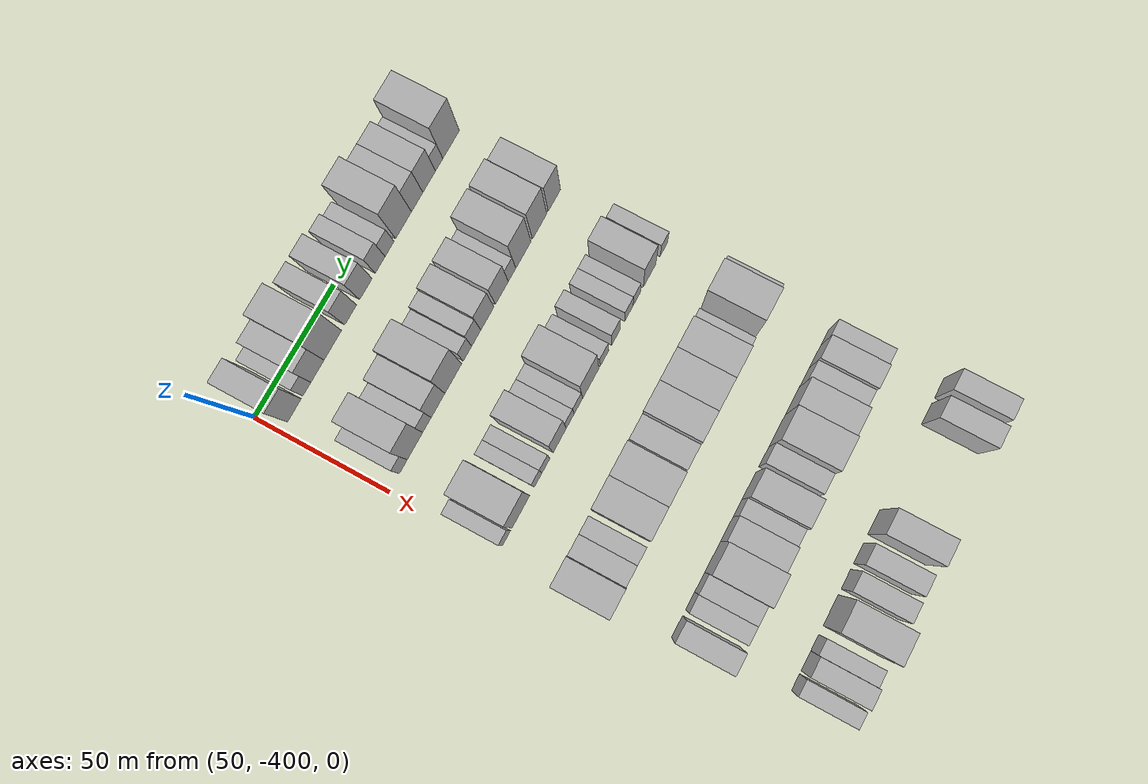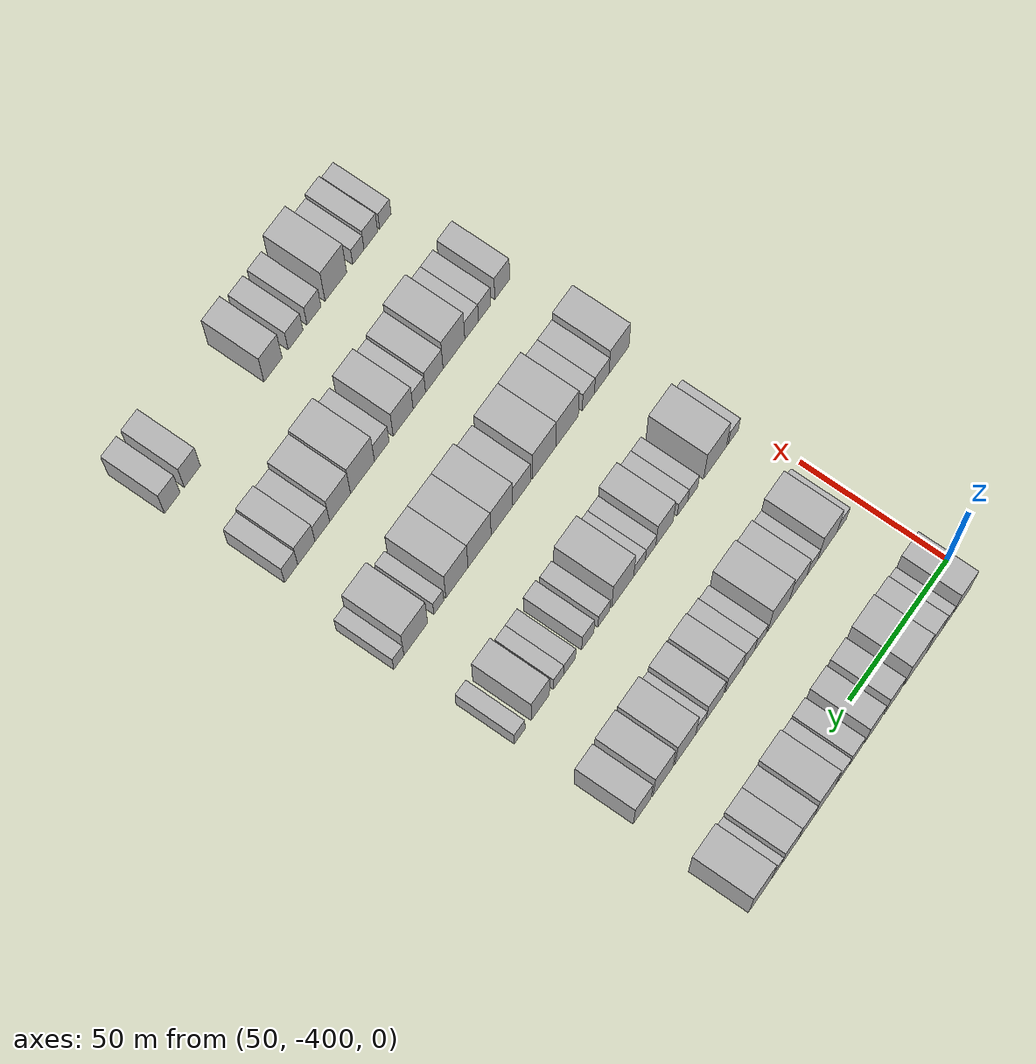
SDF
<sdf version="1.6">
 <world name="default">
  <model name="building_27">
   <static>1</static>
   <pose>50.0000 -391.8530 0 0.000000 0.000000 0.000000</pose>
   <link name="link">
    <pose>0 0 10.50 0 0 0</pose>
    <collision name="collision"><geometry><box><size>20.0000 8.5653 21.0000</size></box></geometry></collision>
    <visual name="visual">
     <cast_shadows>0</cast_shadows>
     <geometry><box><size>20.0000 8.5653 21.0000</size></box></geometry>
     <material>
      <script>
       <uri>model://HANNAS_wall/materials/scripts</uri>
       <uri>model://HANNAS_wall/materials/textures</uri>
       <name>vrc/HANNAS_wall</name>
      </script>
     </material>
    </visual>
   </link>
  </model>
  <model name="building_28">
   <static>1</static>
   <pose>50.0000 -384.0498 0 0.000000 0.000000 0.000000</pose>
   <link name="link">
    <pose>0 0 6.00 0 0 0</pose>
    <collision name="collision"><geometry><box><size>20.0000 5.0412 12.0000</size></box></geometry></collision>
    <visual name="visual">
     <cast_shadows>0</cast_shadows>
     <geometry><box><size>20.0000 5.0412 12.0000</size></box></geometry>
     <material>
      <script>
       <uri>model://HANNAS_wall/materials/scripts</uri>
       <uri>model://HANNAS_wall/materials/textures</uri>
       <name>vrc/HANNAS_wall</name>
      </script>
     </material>
    </visual>
   </link>
  </model>
  <model name="building_29">
   <static>1</static>
   <pose>50.0000 -377.3930 0 0.000000 0.000000 0.000000</pose>
   <link name="link">
    <pose>0 0 9.00 0 0 0</pose>
    <collision name="collision"><geometry><box><size>20.0000 8.2723 18.0000</size></box></geometry></collision>
    <visual name="visual">
     <cast_shadows>0</cast_shadows>
     <geometry><box><size>20.0000 8.2723 18.0000</size></box></geometry>
     <material>
      <script>
       <uri>model://HANNAS_wall/materials/scripts</uri>
       <uri>model://HANNAS_wall/materials/textures</uri>
       <name>vrc/HANNAS_wall</name>
      </script>
     </material>
    </visual>
   </link>
  </model>
  <model name="building_30">
   <static>1</static>
   <pose>50.0000 -367.6596 0 0.000000 0.000000 0.000000</pose>
   <link name="link">
    <pose>0 0 12.00 0 0 0</pose>
    <collision name="collision"><geometry><box><size>20.0000 11.1945 24.0000</size></box></geometry></collision>
    <visual name="visual">
     <cast_shadows>0</cast_shadows>
     <geometry><box><size>20.0000 11.1945 24.0000</size></box></geometry>
     <material>
      <script>
       <uri>model://HANNAS_wall/materials/scripts</uri>
       <uri>model://HANNAS_wall/materials/textures</uri>
       <name>vrc/HANNAS_wall</name>
      </script>
     </material>
    </visual>
   </link>
  </model>
  <model name="building_31">
   <static>1</static>
   <pose>50.0000 -356.2446 0 0.000000 0.000000 0.000000</pose>
   <link name="link">
    <pose>0 0 9.00 0 0 0</pose>
    <collision name="collision"><geometry><box><size>20.0000 7.6356 18.0000</size></box></geometry></collision>
    <visual name="visual">
     <cast_shadows>0</cast_shadows>
     <geometry><box><size>20.0000 7.6356 18.0000</size></box></geometry>
     <material>
      <script>
       <uri>model://HANNAS_wall/materials/scripts</uri>
       <uri>model://HANNAS_wall/materials/textures</uri>
       <name>vrc/HANNAS_wall</name>
      </script>
     </material>
    </visual>
   </link>
  </model>
  <model name="building_32">
   <static>1</static>
   <pose>50.0000 -346.3736 0 0.000000 0.000000 0.000000</pose>
   <link name="link">
    <pose>0 0 9.00 0 0 0</pose>
    <collision name="collision"><geometry><box><size>20.0000 8.1063 18.0000</size></box></geometry></collision>
    <visual name="visual">
     <cast_shadows>0</cast_shadows>
     <geometry><box><size>20.0000 8.1063 18.0000</size></box></geometry>
     <material>
      <script>
       <uri>model://HANNAS_wall/materials/scripts</uri>
       <uri>model://HANNAS_wall/materials/textures</uri>
       <name>vrc/HANNAS_wall</name>
      </script>
     </material>
    </visual>
   </link>
  </model>
  <model name="building_33">
   <static>1</static>
   <pose>50.0000 -337.1075 0 0.000000 0.000000 0.000000</pose>
   <link name="link">
    <pose>0 0 7.50 0 0 0</pose>
    <collision name="collision"><geometry><box><size>20.0000 6.4259 15.0000</size></box></geometry></collision>
    <visual name="visual">
     <cast_shadows>0</cast_shadows>
     <geometry><box><size>20.0000 6.4259 15.0000</size></box></geometry>
     <material>
      <script>
       <uri>model://HANNAS_wall/materials/scripts</uri>
       <uri>model://HANNAS_wall/materials/textures</uri>
       <name>vrc/HANNAS_wall</name>
      </script>
     </material>
    </visual>
   </link>
  </model>
  <model name="building_34">
   <static>1</static>
   <pose>50.0000 -330.9429 0 0.000000 0.000000 0.000000</pose>
   <link name="link">
    <pose>0 0 6.00 0 0 0</pose>
    <collision name="collision"><geometry><box><size>20.0000 5.9034 12.0000</size></box></geometry></collision>
    <visual name="visual">
     <cast_shadows>0</cast_shadows>
     <geometry><box><size>20.0000 5.9034 12.0000</size></box></geometry>
     <material>
      <script>
       <uri>model://HANNAS_wall/materials/scripts</uri>
       <uri>model://HANNAS_wall/materials/textures</uri>
       <name>vrc/HANNAS_wall</name>
      </script>
     </material>
    </visual>
   </link>
  </model>
  <model name="building_35">
   <static>1</static>
   <pose>50.0000 -321.7279 0 0.000000 0.000000 0.000000</pose>
   <link name="link">
    <pose>0 0 12.00 0 0 0</pose>
    <collision name="collision"><geometry><box><size>20.0000 10.5265 24.0000</size></box></geometry></collision>
    <visual name="visual">
     <cast_shadows>0</cast_shadows>
     <geometry><box><size>20.0000 10.5265 24.0000</size></box></geometry>
     <material>
      <script>
       <uri>model://HANNAS_wall/materials/scripts</uri>
       <uri>model://HANNAS_wall/materials/textures</uri>
       <name>vrc/HANNAS_wall</name>
      </script>
     </material>
    </visual>
   </link>
  </model>
  <model name="building_36">
   <static>1</static>
   <pose>50.0000 -312.6658 0 0.000000 0.000000 0.000000</pose>
   <link name="link">
    <pose>0 0 9.00 0 0 0</pose>
    <collision name="collision"><geometry><box><size>20.0000 7.5977 18.0000</size></box></geometry></collision>
    <visual name="visual">
     <cast_shadows>0</cast_shadows>
     <geometry><box><size>20.0000 7.5977 18.0000</size></box></geometry>
     <material>
      <script>
       <uri>model://HANNAS_wall/materials/scripts</uri>
       <uri>model://HANNAS_wall/materials/textures</uri>
       <name>vrc/HANNAS_wall</name>
      </script>
     </material>
    </visual>
   </link>
  </model>
  <model name="building_37">
   <static>1</static>
   <pose>50.0000 -304.6271 0 0.000000 0.000000 0.000000</pose>
   <link name="link">
    <pose>0 0 9.00 0 0 0</pose>
    <collision name="collision"><geometry><box><size>20.0000 8.4796 18.0000</size></box></geometry></collision>
    <visual name="visual">
     <cast_shadows>0</cast_shadows>
     <geometry><box><size>20.0000 8.4796 18.0000</size></box></geometry>
     <material>
      <script>
       <uri>model://HANNAS_wall/materials/scripts</uri>
       <uri>model://HANNAS_wall/materials/textures</uri>
       <name>vrc/HANNAS_wall</name>
      </script>
     </material>
    </visual>
   </link>
  </model>
  <model name="building_38">
   <static>1</static>
   <pose>50.0000 -297.9302 0 0.000000 0.000000 0.000000</pose>
   <link name="link">
    <pose>0 0 6.00 0 0 0</pose>
    <collision name="collision"><geometry><box><size>20.0000 4.9142 12.0000</size></box></geometry></collision>
    <visual name="visual">
     <cast_shadows>0</cast_shadows>
     <geometry><box><size>20.0000 4.9142 12.0000</size></box></geometry>
     <material>
      <script>
       <uri>model://HANNAS_wall/materials/scripts</uri>
       <uri>model://HANNAS_wall/materials/textures</uri>
       <name>vrc/HANNAS_wall</name>
      </script>
     </material>
    </visual>
   </link>
  </model>
  <model name="building_39">
   <static>1</static>
   <pose>50.0000 -289.8506 0 0.000000 0.000000 0.000000</pose>
   <link name="link">
    <pose>0 0 12.00 0 0 0</pose>
    <collision name="collision"><geometry><box><size>20.0000 11.2450 24.0000</size></box></geometry></collision>
    <visual name="visual">
     <cast_shadows>0</cast_shadows>
     <geometry><box><size>20.0000 11.2450 24.0000</size></box></geometry>
     <material>
      <script>
       <uri>model://HANNAS_wall/materials/scripts</uri>
       <uri>model://HANNAS_wall/materials/textures</uri>
       <name>vrc/HANNAS_wall</name>
      </script>
     </material>
    </visual>
   </link>
  </model>
  <model name="building_170">
   <static>1</static>
   <pose>90.0000 -391.0167 0 0.000000 0.000000 0.000000</pose>
   <link name="link">
    <pose>0 0 6.00 0 0 0</pose>
    <collision name="collision"><geometry><box><size>20.0000 5.0214 12.0000</size></box></geometry></collision>
    <visual name="visual">
     <cast_shadows>0</cast_shadows>
     <geometry><box><size>20.0000 5.0214 12.0000</size></box></geometry>
     <material>
      <script>
       <uri>model://HANNAS_wall/materials/scripts</uri>
       <uri>model://HANNAS_wall/materials/textures</uri>
       <name>vrc/HANNAS_wall</name>
      </script>
     </material>
    </visual>
   </link>
  </model>
  <model name="building_171">
   <static>1</static>
   <pose>90.0000 -383.5567 0 0.000000 0.000000 0.000000</pose>
   <link name="link">
    <pose>0 0 12.00 0 0 0</pose>
    <collision name="collision"><geometry><box><size>20.0000 9.8986 24.0000</size></box></geometry></collision>
    <visual name="visual">
     <cast_shadows>0</cast_shadows>
     <geometry><box><size>20.0000 9.8986 24.0000</size></box></geometry>
     <material>
      <script>
       <uri>model://HANNAS_wall/materials/scripts</uri>
       <uri>model://HANNAS_wall/materials/textures</uri>
       <name>vrc/HANNAS_wall</name>
      </script>
     </material>
    </visual>
   </link>
  </model>
  <model name="building_172">
   <static>1</static>
   <pose>90.0000 -375.8844 0 0.000000 0.000000 0.000000</pose>
   <link name="link">
    <pose>0 0 6.00 0 0 0</pose>
    <collision name="collision"><geometry><box><size>20.0000 5.4459 12.0000</size></box></geometry></collision>
    <visual name="visual">
     <cast_shadows>0</cast_shadows>
     <geometry><box><size>20.0000 5.4459 12.0000</size></box></geometry>
     <material>
      <script>
       <uri>model://HANNAS_wall/materials/scripts</uri>
       <uri>model://HANNAS_wall/materials/textures</uri>
       <name>vrc/HANNAS_wall</name>
      </script>
     </material>
    </visual>
   </link>
  </model>
  <model name="building_173">
   <static>1</static>
   <pose>90.0000 -368.7141 0 0.000000 0.000000 0.000000</pose>
   <link name="link">
    <pose>0 0 9.00 0 0 0</pose>
    <collision name="collision"><geometry><box><size>20.0000 8.8949 18.0000</size></box></geometry></collision>
    <visual name="visual">
     <cast_shadows>0</cast_shadows>
     <geometry><box><size>20.0000 8.8949 18.0000</size></box></geometry>
     <material>
      <script>
       <uri>model://HANNAS_wall/materials/scripts</uri>
       <uri>model://HANNAS_wall/materials/textures</uri>
       <name>vrc/HANNAS_wall</name>
      </script>
     </material>
    </visual>
   </link>
  </model>
  <model name="building_174">
   <static>1</static>
   <pose>90.0000 -358.7588 0 0.000000 0.000000 0.000000</pose>
   <link name="link">
    <pose>0 0 12.00 0 0 0</pose>
    <collision name="collision"><geometry><box><size>20.0000 11.0158 24.0000</size></box></geometry></collision>
    <visual name="visual">
     <cast_shadows>0</cast_shadows>
     <geometry><box><size>20.0000 11.0158 24.0000</size></box></geometry>
     <material>
      <script>
       <uri>model://HANNAS_wall/materials/scripts</uri>
       <uri>model://HANNAS_wall/materials/textures</uri>
       <name>vrc/HANNAS_wall</name>
      </script>
     </material>
    </visual>
   </link>
  </model>
  <model name="building_175">
   <static>1</static>
   <pose>90.0000 -349.4535 0 0.000000 0.000000 0.000000</pose>
   <link name="link">
    <pose>0 0 6.00 0 0 0</pose>
    <collision name="collision"><geometry><box><size>20.0000 5.5949 12.0000</size></box></geometry></collision>
    <visual name="visual">
     <cast_shadows>0</cast_shadows>
     <geometry><box><size>20.0000 5.5949 12.0000</size></box></geometry>
     <material>
      <script>
       <uri>model://HANNAS_wall/materials/scripts</uri>
       <uri>model://HANNAS_wall/materials/textures</uri>
       <name>vrc/HANNAS_wall</name>
      </script>
     </material>
    </visual>
   </link>
  </model>
  <model name="building_176">
   <static>1</static>
   <pose>90.0000 -343.6348 0 0.000000 0.000000 0.000000</pose>
   <link name="link">
    <pose>0 0 7.50 0 0 0</pose>
    <collision name="collision"><geometry><box><size>20.0000 6.0424 15.0000</size></box></geometry></collision>
    <visual name="visual">
     <cast_shadows>0</cast_shadows>
     <geometry><box><size>20.0000 6.0424 15.0000</size></box></geometry>
     <material>
      <script>
       <uri>model://HANNAS_wall/materials/scripts</uri>
       <uri>model://HANNAS_wall/materials/textures</uri>
       <name>vrc/HANNAS_wall</name>
      </script>
     </material>
    </visual>
   </link>
  </model>
  <model name="building_177">
   <static>1</static>
   <pose>90.0000 -336.2490 0 0.000000 0.000000 0.000000</pose>
   <link name="link">
    <pose>0 0 9.00 0 0 0</pose>
    <collision name="collision"><geometry><box><size>20.0000 8.7292 18.0000</size></box></geometry></collision>
    <visual name="visual">
     <cast_shadows>0</cast_shadows>
     <geometry><box><size>20.0000 8.7292 18.0000</size></box></geometry>
     <material>
      <script>
       <uri>model://HANNAS_wall/materials/scripts</uri>
       <uri>model://HANNAS_wall/materials/textures</uri>
       <name>vrc/HANNAS_wall</name>
      </script>
     </material>
    </visual>
   </link>
  </model>
  <model name="building_178">
   <static>1</static>
   <pose>90.0000 -326.5201 0 0.000000 0.000000 0.000000</pose>
   <link name="link">
    <pose>0 0 9.00 0 0 0</pose>
    <collision name="collision"><geometry><box><size>20.0000 8.7286 18.0000</size></box></geometry></collision>
    <visual name="visual">
     <cast_shadows>0</cast_shadows>
     <geometry><box><size>20.0000 8.7286 18.0000</size></box></geometry>
     <material>
      <script>
       <uri>model://HANNAS_wall/materials/scripts</uri>
       <uri>model://HANNAS_wall/materials/textures</uri>
       <name>vrc/HANNAS_wall</name>
      </script>
     </material>
    </visual>
   </link>
  </model>
  <model name="building_179">
   <static>1</static>
   <pose>90.0000 -319.6272 0 0.000000 0.000000 0.000000</pose>
   <link name="link">
    <pose>0 0 6.00 0 0 0</pose>
    <collision name="collision"><geometry><box><size>20.0000 5.0571 12.0000</size></box></geometry></collision>
    <visual name="visual">
     <cast_shadows>0</cast_shadows>
     <geometry><box><size>20.0000 5.0571 12.0000</size></box></geometry>
     <material>
      <script>
       <uri>model://HANNAS_wall/materials/scripts</uri>
       <uri>model://HANNAS_wall/materials/textures</uri>
       <name>vrc/HANNAS_wall</name>
      </script>
     </material>
    </visual>
   </link>
  </model>
  <model name="building_180">
   <static>1</static>
   <pose>90.0000 -311.9408 0 0.000000 0.000000 0.000000</pose>
   <link name="link">
    <pose>0 0 12.00 0 0 0</pose>
    <collision name="collision"><geometry><box><size>20.0000 10.3157 24.0000</size></box></geometry></collision>
    <visual name="visual">
     <cast_shadows>0</cast_shadows>
     <geometry><box><size>20.0000 10.3157 24.0000</size></box></geometry>
     <material>
      <script>
       <uri>model://HANNAS_wall/materials/scripts</uri>
       <uri>model://HANNAS_wall/materials/textures</uri>
       <name>vrc/HANNAS_wall</name>
      </script>
     </material>
    </visual>
   </link>
  </model>
  <model name="building_181">
   <static>1</static>
   <pose>90.0000 -300.8740 0 0.000000 0.000000 0.000000</pose>
   <link name="link">
    <pose>0 0 12.00 0 0 0</pose>
    <collision name="collision"><geometry><box><size>20.0000 9.8180 24.0000</size></box></geometry></collision>
    <visual name="visual">
     <cast_shadows>0</cast_shadows>
     <geometry><box><size>20.0000 9.8180 24.0000</size></box></geometry>
     <material>
      <script>
       <uri>model://HANNAS_wall/materials/scripts</uri>
       <uri>model://HANNAS_wall/materials/textures</uri>
       <name>vrc/HANNAS_wall</name>
      </script>
     </material>
    </visual>
   </link>
  </model>
  <model name="building_182">
   <static>1</static>
   <pose>90.0000 -290.6898 0 0.000000 0.000000 0.000000</pose>
   <link name="link">
    <pose>0 0 10.50 0 0 0</pose>
    <collision name="collision"><geometry><box><size>20.0000 8.5504 21.0000</size></box></geometry></collision>
    <visual name="visual">
     <cast_shadows>0</cast_shadows>
     <geometry><box><size>20.0000 8.5504 21.0000</size></box></geometry>
     <material>
      <script>
       <uri>model://HANNAS_wall/materials/scripts</uri>
       <uri>model://HANNAS_wall/materials/textures</uri>
       <name>vrc/HANNAS_wall</name>
      </script>
     </material>
    </visual>
   </link>
  </model>
  <model name="building_303">
   <static>1</static>
   <pose>130.0000 -395.1332 0 0.000000 0.000000 0.000000</pose>
   <link name="link">
    <pose>0 0 6.00 0 0 0</pose>
    <collision name="collision"><geometry><box><size>20.0000 5.1556 12.0000</size></box></geometry></collision>
    <visual name="visual">
     <cast_shadows>0</cast_shadows>
     <geometry><box><size>20.0000 5.1556 12.0000</size></box></geometry>
     <material>
      <script>
       <uri>model://HANNAS_wall/materials/scripts</uri>
       <uri>model://HANNAS_wall/materials/textures</uri>
       <name>vrc/HANNAS_wall</name>
      </script>
     </material>
    </visual>
   </link>
  </model>
  <model name="building_304">
   <static>1</static>
   <pose>130.0000 -385.7916 0 0.000000 0.000000 0.000000</pose>
   <link name="link">
    <pose>0 0 12.00 0 0 0</pose>
    <collision name="collision"><geometry><box><size>20.0000 11.5278 24.0000</size></box></geometry></collision>
    <visual name="visual">
     <cast_shadows>0</cast_shadows>
     <geometry><box><size>20.0000 11.5278 24.0000</size></box></geometry>
     <material>
      <script>
       <uri>model://HANNAS_wall/materials/scripts</uri>
       <uri>model://HANNAS_wall/materials/textures</uri>
       <name>vrc/HANNAS_wall</name>
      </script>
     </material>
    </visual>
   </link>
  </model>
  <model name="building_305">
   <static>1</static>
   <pose>130.0000 -374.5091 0 0.000000 0.000000 0.000000</pose>
   <link name="link">
    <pose>0 0 6.00 0 0 0</pose>
    <collision name="collision"><geometry><box><size>20.0000 5.0370 12.0000</size></box></geometry></collision>
    <visual name="visual">
     <cast_shadows>0</cast_shadows>
     <geometry><box><size>20.0000 5.0370 12.0000</size></box></geometry>
     <material>
      <script>
       <uri>model://HANNAS_wall/materials/scripts</uri>
       <uri>model://HANNAS_wall/materials/textures</uri>
       <name>vrc/HANNAS_wall</name>
      </script>
     </material>
    </visual>
   </link>
  </model>
  <model name="building_306">
   <static>1</static>
   <pose>130.0000 -369.2993 0 0.000000 0.000000 0.000000</pose>
   <link name="link">
    <pose>0 0 6.00 0 0 0</pose>
    <collision name="collision"><geometry><box><size>20.0000 5.3827 12.0000</size></box></geometry></collision>
    <visual name="visual">
     <cast_shadows>0</cast_shadows>
     <geometry><box><size>20.0000 5.3827 12.0000</size></box></geometry>
     <material>
      <script>
       <uri>model://HANNAS_wall/materials/scripts</uri>
       <uri>model://HANNAS_wall/materials/textures</uri>
       <name>vrc/HANNAS_wall</name>
      </script>
     </material>
    </visual>
   </link>
  </model>
  <model name="building_307">
   <static>1</static>
   <pose>130.0000 -360.2123 0 0.000000 0.000000 0.000000</pose>
   <link name="link">
    <pose>0 0 10.50 0 0 0</pose>
    <collision name="collision"><geometry><box><size>20.0000 8.7913 21.0000</size></box></geometry></collision>
    <visual name="visual">
     <cast_shadows>0</cast_shadows>
     <geometry><box><size>20.0000 8.7913 21.0000</size></box></geometry>
     <material>
      <script>
       <uri>model://HANNAS_wall/materials/scripts</uri>
       <uri>model://HANNAS_wall/materials/textures</uri>
       <name>vrc/HANNAS_wall</name>
      </script>
     </material>
    </visual>
   </link>
  </model>
  <model name="building_308">
   <static>1</static>
   <pose>130.0000 -353.1827 0 0.000000 0.000000 0.000000</pose>
   <link name="link">
    <pose>0 0 6.00 0 0 0</pose>
    <collision name="collision"><geometry><box><size>20.0000 5.2679 12.0000</size></box></geometry></collision>
    <visual name="visual">
     <cast_shadows>0</cast_shadows>
     <geometry><box><size>20.0000 5.2679 12.0000</size></box></geometry>
     <material>
      <script>
       <uri>model://HANNAS_wall/materials/scripts</uri>
       <uri>model://HANNAS_wall/materials/textures</uri>
       <name>vrc/HANNAS_wall</name>
      </script>
     </material>
    </visual>
   </link>
  </model>
  <model name="building_309">
   <static>1</static>
   <pose>130.0000 -347.6521 0 0.000000 0.000000 0.000000</pose>
   <link name="link">
    <pose>0 0 6.00 0 0 0</pose>
    <collision name="collision"><geometry><box><size>20.0000 5.7932 12.0000</size></box></geometry></collision>
    <visual name="visual">
     <cast_shadows>0</cast_shadows>
     <geometry><box><size>20.0000 5.7932 12.0000</size></box></geometry>
     <material>
      <script>
       <uri>model://HANNAS_wall/materials/scripts</uri>
       <uri>model://HANNAS_wall/materials/textures</uri>
       <name>vrc/HANNAS_wall</name>
      </script>
     </material>
    </visual>
   </link>
  </model>
  <model name="building_310">
   <static>1</static>
   <pose>130.0000 -339.2864 0 0.000000 0.000000 0.000000</pose>
   <link name="link">
    <pose>0 0 12.00 0 0 0</pose>
    <collision name="collision"><geometry><box><size>20.0000 10.9383 24.0000</size></box></geometry></collision>
    <visual name="visual">
     <cast_shadows>0</cast_shadows>
     <geometry><box><size>20.0000 10.9383 24.0000</size></box></geometry>
     <material>
      <script>
       <uri>model://HANNAS_wall/materials/scripts</uri>
       <uri>model://HANNAS_wall/materials/textures</uri>
       <name>vrc/HANNAS_wall</name>
      </script>
     </material>
    </visual>
   </link>
  </model>
  <model name="building_311">
   <static>1</static>
   <pose>130.0000 -329.9083 0 0.000000 0.000000 0.000000</pose>
   <link name="link">
    <pose>0 0 6.00 0 0 0</pose>
    <collision name="collision"><geometry><box><size>20.0000 5.8177 12.0000</size></box></geometry></collision>
    <visual name="visual">
     <cast_shadows>0</cast_shadows>
     <geometry><box><size>20.0000 5.8177 12.0000</size></box></geometry>
     <material>
      <script>
       <uri>model://HANNAS_wall/materials/scripts</uri>
       <uri>model://HANNAS_wall/materials/textures</uri>
       <name>vrc/HANNAS_wall</name>
      </script>
     </material>
    </visual>
   </link>
  </model>
  <model name="building_312">
   <static>1</static>
   <pose>130.0000 -321.9792 0 0.000000 0.000000 0.000000</pose>
   <link name="link">
    <pose>0 0 7.50 0 0 0</pose>
    <collision name="collision"><geometry><box><size>20.0000 6.0405 15.0000</size></box></geometry></collision>
    <visual name="visual">
     <cast_shadows>0</cast_shadows>
     <geometry><box><size>20.0000 6.0405 15.0000</size></box></geometry>
     <material>
      <script>
       <uri>model://HANNAS_wall/materials/scripts</uri>
       <uri>model://HANNAS_wall/materials/textures</uri>
       <name>vrc/HANNAS_wall</name>
      </script>
     </material>
    </visual>
   </link>
  </model>
  <model name="building_313">
   <static>1</static>
   <pose>130.0000 -313.0718 0 0.000000 0.000000 0.000000</pose>
   <link name="link">
    <pose>0 0 6.00 0 0 0</pose>
    <collision name="collision"><geometry><box><size>20.0000 5.7742 12.0000</size></box></geometry></collision>
    <visual name="visual">
     <cast_shadows>0</cast_shadows>
     <geometry><box><size>20.0000 5.7742 12.0000</size></box></geometry>
     <material>
      <script>
       <uri>model://HANNAS_wall/materials/scripts</uri>
       <uri>model://HANNAS_wall/materials/textures</uri>
       <name>vrc/HANNAS_wall</name>
      </script>
     </material>
    </visual>
   </link>
  </model>
  <model name="building_314">
   <static>1</static>
   <pose>130.0000 -307.6455 0 0.000000 0.000000 0.000000</pose>
   <link name="link">
    <pose>0 0 6.00 0 0 0</pose>
    <collision name="collision"><geometry><box><size>20.0000 5.0784 12.0000</size></box></geometry></collision>
    <visual name="visual">
     <cast_shadows>0</cast_shadows>
     <geometry><box><size>20.0000 5.0784 12.0000</size></box></geometry>
     <material>
      <script>
       <uri>model://HANNAS_wall/materials/scripts</uri>
       <uri>model://HANNAS_wall/materials/textures</uri>
       <name>vrc/HANNAS_wall</name>
      </script>
     </material>
    </visual>
   </link>
  </model>
  <model name="building_315">
   <static>1</static>
   <pose>130.0000 -298.6575 0 0.000000 0.000000 0.000000</pose>
   <link name="link">
    <pose>0 0 10.50 0 0 0</pose>
    <collision name="collision"><geometry><box><size>20.0000 8.8975 21.0000</size></box></geometry></collision>
    <visual name="visual">
     <cast_shadows>0</cast_shadows>
     <geometry><box><size>20.0000 8.8975 21.0000</size></box></geometry>
     <material>
      <script>
       <uri>model://HANNAS_wall/materials/scripts</uri>
       <uri>model://HANNAS_wall/materials/textures</uri>
       <name>vrc/HANNAS_wall</name>
      </script>
     </material>
    </visual>
   </link>
  </model>
  <model name="building_316">
   <static>1</static>
   <pose>130.0000 -288.6203 0 0.000000 0.000000 0.000000</pose>
   <link name="link">
    <pose>0 0 6.00 0 0 0</pose>
    <collision name="collision"><geometry><box><size>20.0000 5.1771 12.0000</size></box></geometry></collision>
    <visual name="visual">
     <cast_shadows>0</cast_shadows>
     <geometry><box><size>20.0000 5.1771 12.0000</size></box></geometry>
     <material>
      <script>
       <uri>model://HANNAS_wall/materials/scripts</uri>
       <uri>model://HANNAS_wall/materials/textures</uri>
       <name>vrc/HANNAS_wall</name>
      </script>
     </material>
    </visual>
   </link>
  </model>
  <model name="building_433">
   <static>1</static>
   <pose>170.0000 -395.4933 0 0.000000 0.000000 0.000000</pose>
   <link name="link">
    <pose>0 0 10.50 0 0 0</pose>
    <collision name="collision"><geometry><box><size>20.0000 10.1342 21.0000</size></box></geometry></collision>
    <visual name="visual">
     <cast_shadows>0</cast_shadows>
     <geometry><box><size>20.0000 10.1342 21.0000</size></box></geometry>
     <material>
      <script>
       <uri>model://HANNAS_wall/materials/scripts</uri>
       <uri>model://HANNAS_wall/materials/textures</uri>
       <name>vrc/HANNAS_wall</name>
      </script>
     </material>
    </visual>
   </link>
  </model>
  <model name="building_434">
   <static>1</static>
   <pose>170.0000 -386.7577 0 0.000000 0.000000 0.000000</pose>
   <link name="link">
    <pose>0 0 7.50 0 0 0</pose>
    <collision name="collision"><geometry><box><size>20.0000 7.3370 15.0000</size></box></geometry></collision>
    <visual name="visual">
     <cast_shadows>0</cast_shadows>
     <geometry><box><size>20.0000 7.3370 15.0000</size></box></geometry>
     <material>
      <script>
       <uri>model://HANNAS_wall/materials/scripts</uri>
       <uri>model://HANNAS_wall/materials/textures</uri>
       <name>vrc/HANNAS_wall</name>
      </script>
     </material>
    </visual>
   </link>
  </model>
  <model name="building_435">
   <static>1</static>
   <pose>170.0000 -380.0171 0 0.000000 0.000000 0.000000</pose>
   <link name="link">
    <pose>0 0 7.50 0 0 0</pose>
    <collision name="collision"><geometry><box><size>20.0000 6.1442 15.0000</size></box></geometry></collision>
    <visual name="visual">
     <cast_shadows>0</cast_shadows>
     <geometry><box><size>20.0000 6.1442 15.0000</size></box></geometry>
     <material>
      <script>
       <uri>model://HANNAS_wall/materials/scripts</uri>
       <uri>model://HANNAS_wall/materials/textures</uri>
       <name>vrc/HANNAS_wall</name>
      </script>
     </material>
    </visual>
   </link>
  </model>
  <model name="building_436">
   <static>1</static>
   <pose>170.0000 -369.3293 0 0.000000 0.000000 0.000000</pose>
   <link name="link">
    <pose>0 0 12.00 0 0 0</pose>
    <collision name="collision"><geometry><box><size>20.0000 11.2314 24.0000</size></box></geometry></collision>
    <visual name="visual">
     <cast_shadows>0</cast_shadows>
     <geometry><box><size>20.0000 11.2314 24.0000</size></box></geometry>
     <material>
      <script>
       <uri>model://HANNAS_wall/materials/scripts</uri>
       <uri>model://HANNAS_wall/materials/textures</uri>
       <name>vrc/HANNAS_wall</name>
      </script>
     </material>
    </visual>
   </link>
  </model>
  <model name="building_437">
   <static>1</static>
   <pose>170.0000 -357.8789 0 0.000000 0.000000 0.000000</pose>
   <link name="link">
    <pose>0 0 12.00 0 0 0</pose>
    <collision name="collision"><geometry><box><size>20.0000 11.6695 24.0000</size></box></geometry></collision>
    <visual name="visual">
     <cast_shadows>0</cast_shadows>
     <geometry><box><size>20.0000 11.6695 24.0000</size></box></geometry>
     <material>
      <script>
       <uri>model://HANNAS_wall/materials/scripts</uri>
       <uri>model://HANNAS_wall/materials/textures</uri>
       <name>vrc/HANNAS_wall</name>
      </script>
     </material>
    </visual>
   </link>
  </model>
  <model name="building_438">
   <static>1</static>
   <pose>170.0000 -346.6356 0 0.000000 0.000000 0.000000</pose>
   <link name="link">
    <pose>0 0 9.00 0 0 0</pose>
    <collision name="collision"><geometry><box><size>20.0000 8.8170 18.0000</size></box></geometry></collision>
    <visual name="visual">
     <cast_shadows>0</cast_shadows>
     <geometry><box><size>20.0000 8.8170 18.0000</size></box></geometry>
     <material>
      <script>
       <uri>model://HANNAS_wall/materials/scripts</uri>
       <uri>model://HANNAS_wall/materials/textures</uri>
       <name>vrc/HANNAS_wall</name>
      </script>
     </material>
    </visual>
   </link>
  </model>
  <model name="building_439">
   <static>1</static>
   <pose>170.0000 -336.9085 0 0.000000 0.000000 0.000000</pose>
   <link name="link">
    <pose>0 0 12.00 0 0 0</pose>
    <collision name="collision"><geometry><box><size>20.0000 10.6372 24.0000</size></box></geometry></collision>
    <visual name="visual">
     <cast_shadows>0</cast_shadows>
     <geometry><box><size>20.0000 10.6372 24.0000</size></box></geometry>
     <material>
      <script>
       <uri>model://HANNAS_wall/materials/scripts</uri>
       <uri>model://HANNAS_wall/materials/textures</uri>
       <name>vrc/HANNAS_wall</name>
      </script>
     </material>
    </visual>
   </link>
  </model>
  <model name="building_440">
   <static>1</static>
   <pose>170.0000 -325.9032 0 0.000000 0.000000 0.000000</pose>
   <link name="link">
    <pose>0 0 12.00 0 0 0</pose>
    <collision name="collision"><geometry><box><size>20.0000 11.3734 24.0000</size></box></geometry></collision>
    <visual name="visual">
     <cast_shadows>0</cast_shadows>
     <geometry><box><size>20.0000 11.3734 24.0000</size></box></geometry>
     <material>
      <script>
       <uri>model://HANNAS_wall/materials/scripts</uri>
       <uri>model://HANNAS_wall/materials/textures</uri>
       <name>vrc/HANNAS_wall</name>
      </script>
     </material>
    </visual>
   </link>
  </model>
  <model name="building_441">
   <static>1</static>
   <pose>170.0000 -314.7889 0 0.000000 0.000000 0.000000</pose>
   <link name="link">
    <pose>0 0 12.00 0 0 0</pose>
    <collision name="collision"><geometry><box><size>20.0000 10.8554 24.0000</size></box></geometry></collision>
    <visual name="visual">
     <cast_shadows>0</cast_shadows>
     <geometry><box><size>20.0000 10.8554 24.0000</size></box></geometry>
     <material>
      <script>
       <uri>model://HANNAS_wall/materials/scripts</uri>
       <uri>model://HANNAS_wall/materials/textures</uri>
       <name>vrc/HANNAS_wall</name>
      </script>
     </material>
    </visual>
   </link>
  </model>
  <model name="building_442">
   <static>1</static>
   <pose>170.0000 -305.9324 0 0.000000 0.000000 0.000000</pose>
   <link name="link">
    <pose>0 0 6.00 0 0 0</pose>
    <collision name="collision"><geometry><box><size>20.0000 4.8576 12.0000</size></box></geometry></collision>
    <visual name="visual">
     <cast_shadows>0</cast_shadows>
     <geometry><box><size>20.0000 4.8576 12.0000</size></box></geometry>
     <material>
      <script>
       <uri>model://HANNAS_wall/materials/scripts</uri>
       <uri>model://HANNAS_wall/materials/textures</uri>
       <name>vrc/HANNAS_wall</name>
      </script>
     </material>
    </visual>
   </link>
  </model>
  <model name="building_443">
   <static>1</static>
   <pose>170.0000 -294.7509 0 0.000000 0.000000 0.000000</pose>
   <link name="link">
    <pose>0 0 12.00 0 0 0</pose>
    <collision name="collision"><geometry><box><size>20.0000 11.5053 24.0000</size></box></geometry></collision>
    <visual name="visual">
     <cast_shadows>0</cast_shadows>
     <geometry><box><size>20.0000 11.5053 24.0000</size></box></geometry>
     <material>
      <script>
       <uri>model://HANNAS_wall/materials/scripts</uri>
       <uri>model://HANNAS_wall/materials/textures</uri>
       <name>vrc/HANNAS_wall</name>
      </script>
     </material>
    </visual>
   </link>
  </model>
  <model name="building_444">
   <static>1</static>
   <pose>170.0000 -286.5485 0 0.000000 0.000000 0.000000</pose>
   <link name="link">
    <pose>0 0 6.00 0 0 0</pose>
    <collision name="collision"><geometry><box><size>20.0000 4.8996 12.0000</size></box></geometry></collision>
    <visual name="visual">
     <cast_shadows>0</cast_shadows>
     <geometry><box><size>20.0000 4.8996 12.0000</size></box></geometry>
     <material>
      <script>
       <uri>model://HANNAS_wall/materials/scripts</uri>
       <uri>model://HANNAS_wall/materials/textures</uri>
       <name>vrc/HANNAS_wall</name>
      </script>
     </material>
    </visual>
   </link>
  </model>
  <model name="building_579">
   <static>1</static>
   <pose>210.0000 -393.8983 0 0.000000 0.000000 0.000000</pose>
   <link name="link">
    <pose>0 0 9.00 0 0 0</pose>
    <collision name="collision"><geometry><box><size>20.0000 7.4602 18.0000</size></box></geometry></collision>
    <visual name="visual">
     <cast_shadows>0</cast_shadows>
     <geometry><box><size>20.0000 7.4602 18.0000</size></box></geometry>
     <material>
      <script>
       <uri>model://HANNAS_wall/materials/scripts</uri>
       <uri>model://HANNAS_wall/materials/textures</uri>
       <name>vrc/HANNAS_wall</name>
      </script>
     </material>
    </visual>
   </link>
  </model>
  <model name="building_580">
   <static>1</static>
   <pose>210.0000 -385.0691 0 0.000000 0.000000 0.000000</pose>
   <link name="link">
    <pose>0 0 7.50 0 0 0</pose>
    <collision name="collision"><geometry><box><size>20.0000 6.1983 15.0000</size></box></geometry></collision>
    <visual name="visual">
     <cast_shadows>0</cast_shadows>
     <geometry><box><size>20.0000 6.1983 15.0000</size></box></geometry>
     <material>
      <script>
       <uri>model://HANNAS_wall/materials/scripts</uri>
       <uri>model://HANNAS_wall/materials/textures</uri>
       <name>vrc/HANNAS_wall</name>
      </script>
     </material>
    </visual>
   </link>
  </model>
  <model name="building_581">
   <static>1</static>
   <pose>210.0000 -378.5689 0 0.000000 0.000000 0.000000</pose>
   <link name="link">
    <pose>0 0 7.50 0 0 0</pose>
    <collision name="collision"><geometry><box><size>20.0000 6.8022 15.0000</size></box></geometry></collision>
    <visual name="visual">
     <cast_shadows>0</cast_shadows>
     <geometry><box><size>20.0000 6.8022 15.0000</size></box></geometry>
     <material>
      <script>
       <uri>model://HANNAS_wall/materials/scripts</uri>
       <uri>model://HANNAS_wall/materials/textures</uri>
       <name>vrc/HANNAS_wall</name>
      </script>
     </material>
    </visual>
   </link>
  </model>
  <model name="building_582">
   <static>1</static>
   <pose>210.0000 -369.7391 0 0.000000 0.000000 0.000000</pose>
   <link name="link">
    <pose>0 0 12.00 0 0 0</pose>
    <collision name="collision"><geometry><box><size>20.0000 10.8573 24.0000</size></box></geometry></collision>
    <visual name="visual">
     <cast_shadows>0</cast_shadows>
     <geometry><box><size>20.0000 10.8573 24.0000</size></box></geometry>
     <material>
      <script>
       <uri>model://HANNAS_wall/materials/scripts</uri>
       <uri>model://HANNAS_wall/materials/textures</uri>
       <name>vrc/HANNAS_wall</name>
      </script>
     </material>
    </visual>
   </link>
  </model>
  <model name="building_583">
   <static>1</static>
   <pose>210.0000 -359.9576 0 0.000000 0.000000 0.000000</pose>
   <link name="link">
    <pose>0 0 9.00 0 0 0</pose>
    <collision name="collision"><geometry><box><size>20.0000 8.7058 18.0000</size></box></geometry></collision>
    <visual name="visual">
     <cast_shadows>0</cast_shadows>
     <geometry><box><size>20.0000 8.7058 18.0000</size></box></geometry>
     <material>
      <script>
       <uri>model://HANNAS_wall/materials/scripts</uri>
       <uri>model://HANNAS_wall/materials/textures</uri>
       <name>vrc/HANNAS_wall</name>
      </script>
     </material>
    </visual>
   </link>
  </model>
  <model name="building_584">
   <static>1</static>
   <pose>210.0000 -352.5343 0 0.000000 0.000000 0.000000</pose>
   <link name="link">
    <pose>0 0 7.50 0 0 0</pose>
    <collision name="collision"><geometry><box><size>20.0000 6.1408 15.0000</size></box></geometry></collision>
    <visual name="visual">
     <cast_shadows>0</cast_shadows>
     <geometry><box><size>20.0000 6.1408 15.0000</size></box></geometry>
     <material>
      <script>
       <uri>model://HANNAS_wall/materials/scripts</uri>
       <uri>model://HANNAS_wall/materials/textures</uri>
       <name>vrc/HANNAS_wall</name>
      </script>
     </material>
    </visual>
   </link>
  </model>
  <model name="building_585">
   <static>1</static>
   <pose>210.0000 -344.5575 0 0.000000 0.000000 0.000000</pose>
   <link name="link">
    <pose>0 0 10.50 0 0 0</pose>
    <collision name="collision"><geometry><box><size>20.0000 9.8129 21.0000</size></box></geometry></collision>
    <visual name="visual">
     <cast_shadows>0</cast_shadows>
     <geometry><box><size>20.0000 9.8129 21.0000</size></box></geometry>
     <material>
      <script>
       <uri>model://HANNAS_wall/materials/scripts</uri>
       <uri>model://HANNAS_wall/materials/textures</uri>
       <name>vrc/HANNAS_wall</name>
      </script>
     </material>
    </visual>
   </link>
  </model>
  <model name="building_586">
   <static>1</static>
   <pose>210.0000 -334.0791 0 0.000000 0.000000 0.000000</pose>
   <link name="link">
    <pose>0 0 7.50 0 0 0</pose>
    <collision name="collision"><geometry><box><size>20.0000 7.1439 15.0000</size></box></geometry></collision>
    <visual name="visual">
     <cast_shadows>0</cast_shadows>
     <geometry><box><size>20.0000 7.1439 15.0000</size></box></geometry>
     <material>
      <script>
       <uri>model://HANNAS_wall/materials/scripts</uri>
       <uri>model://HANNAS_wall/materials/textures</uri>
       <name>vrc/HANNAS_wall</name>
      </script>
     </material>
    </visual>
   </link>
  </model>
  <model name="building_587">
   <static>1</static>
   <pose>210.0000 -324.6545 0 0.000000 0.000000 0.000000</pose>
   <link name="link">
    <pose>0 0 12.00 0 0 0</pose>
    <collision name="collision"><geometry><box><size>20.0000 11.7053 24.0000</size></box></geometry></collision>
    <visual name="visual">
     <cast_shadows>0</cast_shadows>
     <geometry><box><size>20.0000 11.7053 24.0000</size></box></geometry>
     <material>
      <script>
       <uri>model://HANNAS_wall/materials/scripts</uri>
       <uri>model://HANNAS_wall/materials/textures</uri>
       <name>vrc/HANNAS_wall</name>
      </script>
     </material>
    </visual>
   </link>
  </model>
  <model name="building_588">
   <static>1</static>
   <pose>210.0000 -313.7177 0 0.000000 0.000000 0.000000</pose>
   <link name="link">
    <pose>0 0 10.50 0 0 0</pose>
    <collision name="collision"><geometry><box><size>20.0000 10.1681 21.0000</size></box></geometry></collision>
    <visual name="visual">
     <cast_shadows>0</cast_shadows>
     <geometry><box><size>20.0000 10.1681 21.0000</size></box></geometry>
     <material>
      <script>
       <uri>model://HANNAS_wall/materials/scripts</uri>
       <uri>model://HANNAS_wall/materials/textures</uri>
       <name>vrc/HANNAS_wall</name>
      </script>
     </material>
    </visual>
   </link>
  </model>
  <model name="building_589">
   <static>1</static>
   <pose>210.0000 -305.0664 0 0.000000 0.000000 0.000000</pose>
   <link name="link">
    <pose>0 0 7.50 0 0 0</pose>
    <collision name="collision"><geometry><box><size>20.0000 7.1346 15.0000</size></box></geometry></collision>
    <visual name="visual">
     <cast_shadows>0</cast_shadows>
     <geometry><box><size>20.0000 7.1346 15.0000</size></box></geometry>
     <material>
      <script>
       <uri>model://HANNAS_wall/materials/scripts</uri>
       <uri>model://HANNAS_wall/materials/textures</uri>
       <name>vrc/HANNAS_wall</name>
      </script>
     </material>
    </visual>
   </link>
  </model>
  <model name="building_590">
   <static>1</static>
   <pose>210.0000 -297.3513 0 0.000000 0.000000 0.000000</pose>
   <link name="link">
    <pose>0 0 9.00 0 0 0</pose>
    <collision name="collision"><geometry><box><size>20.0000 8.2958 18.0000</size></box></geometry></collision>
    <visual name="visual">
     <cast_shadows>0</cast_shadows>
     <geometry><box><size>20.0000 8.2958 18.0000</size></box></geometry>
     <material>
      <script>
       <uri>model://HANNAS_wall/materials/scripts</uri>
       <uri>model://HANNAS_wall/materials/textures</uri>
       <name>vrc/HANNAS_wall</name>
      </script>
     </material>
    </visual>
   </link>
  </model>
  <model name="building_591">
   <static>1</static>
   <pose>210.0000 -290.0554 0 0.000000 0.000000 0.000000</pose>
   <link name="link">
    <pose>0 0 7.50 0 0 0</pose>
    <collision name="collision"><geometry><box><size>20.0000 6.2960 15.0000</size></box></geometry></collision>
    <visual name="visual">
     <cast_shadows>0</cast_shadows>
     <geometry><box><size>20.0000 6.2960 15.0000</size></box></geometry>
     <material>
      <script>
       <uri>model://HANNAS_wall/materials/scripts</uri>
       <uri>model://HANNAS_wall/materials/textures</uri>
       <name>vrc/HANNAS_wall</name>
      </script>
     </material>
    </visual>
   </link>
  </model>
  <model name="building_714">
   <static>1</static>
   <pose>250.0000 -391.5542 0 0.000000 0.000000 0.000000</pose>
   <link name="link">
    <pose>0 0 6.00 0 0 0</pose>
    <collision name="collision"><geometry><box><size>20.0000 5.7019 12.0000</size></box></geometry></collision>
    <visual name="visual">
     <cast_shadows>0</cast_shadows>
     <geometry><box><size>20.0000 5.7019 12.0000</size></box></geometry>
     <material>
      <script>
       <uri>model://HANNAS_wall/materials/scripts</uri>
       <uri>model://HANNAS_wall/materials/textures</uri>
       <name>vrc/HANNAS_wall</name>
      </script>
     </material>
    </visual>
   </link>
  </model>
  <model name="building_715">
   <static>1</static>
   <pose>250.0000 -384.3088 0 0.000000 0.000000 0.000000</pose>
   <link name="link">
    <pose>0 0 7.50 0 0 0</pose>
    <collision name="collision"><geometry><box><size>20.0000 6.7888 15.0000</size></box></geometry></collision>
    <visual name="visual">
     <cast_shadows>0</cast_shadows>
     <geometry><box><size>20.0000 6.7888 15.0000</size></box></geometry>
     <material>
      <script>
       <uri>model://HANNAS_wall/materials/scripts</uri>
       <uri>model://HANNAS_wall/materials/textures</uri>
       <name>vrc/HANNAS_wall</name>
      </script>
     </material>
    </visual>
   </link>
  </model>
  <model name="building_716">
   <static>1</static>
   <pose>250.0000 -378.1128 0 0.000000 0.000000 0.000000</pose>
   <link name="link">
    <pose>0 0 6.00 0 0 0</pose>
    <collision name="collision"><geometry><box><size>20.0000 5.6032 12.0000</size></box></geometry></collision>
    <visual name="visual">
     <cast_shadows>0</cast_shadows>
     <geometry><box><size>20.0000 5.6032 12.0000</size></box></geometry>
     <material>
      <script>
       <uri>model://HANNAS_wall/materials/scripts</uri>
       <uri>model://HANNAS_wall/materials/textures</uri>
       <name>vrc/HANNAS_wall</name>
      </script>
     </material>
    </visual>
   </link>
  </model>
  <model name="building_717">
   <static>1</static>
   <pose>250.0000 -366.9544 0 0.000000 0.000000 0.000000</pose>
   <link name="link">
    <pose>0 0 12.00 0 0 0</pose>
    <collision name="collision"><geometry><box><size>20.0000 10.7135 24.0000</size></box></geometry></collision>
    <visual name="visual">
     <cast_shadows>0</cast_shadows>
     <geometry><box><size>20.0000 10.7135 24.0000</size></box></geometry>
     <material>
      <script>
       <uri>model://HANNAS_wall/materials/scripts</uri>
       <uri>model://HANNAS_wall/materials/textures</uri>
       <name>vrc/HANNAS_wall</name>
      </script>
     </material>
    </visual>
   </link>
  </model>
  <model name="building_718">
   <static>1</static>
   <pose>250.0000 -356.1546 0 0.000000 0.000000 0.000000</pose>
   <link name="link">
    <pose>0 0 7.50 0 0 0</pose>
    <collision name="collision"><geometry><box><size>20.0000 6.8862 15.0000</size></box></geometry></collision>
    <visual name="visual">
     <cast_shadows>0</cast_shadows>
     <geometry><box><size>20.0000 6.8862 15.0000</size></box></geometry>
     <material>
      <script>
       <uri>model://HANNAS_wall/materials/scripts</uri>
       <uri>model://HANNAS_wall/materials/textures</uri>
       <name>vrc/HANNAS_wall</name>
      </script>
     </material>
    </visual>
   </link>
  </model>
  <model name="building_719">
   <static>1</static>
   <pose>250.0000 -347.1011 0 0.000000 0.000000 0.000000</pose>
   <link name="link">
    <pose>0 0 7.50 0 0 0</pose>
    <collision name="collision"><geometry><box><size>20.0000 7.2208 15.0000</size></box></geometry></collision>
    <visual name="visual">
     <cast_shadows>0</cast_shadows>
     <geometry><box><size>20.0000 7.2208 15.0000</size></box></geometry>
     <material>
      <script>
       <uri>model://HANNAS_wall/materials/scripts</uri>
       <uri>model://HANNAS_wall/materials/textures</uri>
       <name>vrc/HANNAS_wall</name>
      </script>
     </material>
    </visual>
   </link>
  </model>
  <model name="building_720">
   <static>1</static>
   <pose>250.0000 -336.0811 0 0.000000 0.000000 0.000000</pose>
   <link name="link">
    <pose>0 0 10.50 0 0 0</pose>
    <collision name="collision"><geometry><box><size>20.0000 8.8192 21.0000</size></box></geometry></collision>
    <visual name="visual">
     <cast_shadows>0</cast_shadows>
     <geometry><box><size>20.0000 8.8192 21.0000</size></box></geometry>
     <material>
      <script>
       <uri>model://HANNAS_wall/materials/scripts</uri>
       <uri>model://HANNAS_wall/materials/textures</uri>
       <name>vrc/HANNAS_wall</name>
      </script>
     </material>
    </visual>
   </link>
  </model>
  <model name="building_721">
   <static>1</static>
   <pose>250.0000 -297.0359 0 0.000000 0.000000 0.000000</pose>
   <link name="link">
    <pose>0 0 9.00 0 0 0</pose>
    <collision name="collision"><geometry><box><size>20.0000 7.7571 18.0000</size></box></geometry></collision>
    <visual name="visual">
     <cast_shadows>0</cast_shadows>
     <geometry><box><size>20.0000 7.7571 18.0000</size></box></geometry>
     <material>
      <script>
       <uri>model://HANNAS_wall/materials/scripts</uri>
       <uri>model://HANNAS_wall/materials/textures</uri>
       <name>vrc/HANNAS_wall</name>
      </script>
     </material>
    </visual>
   </link>
  </model>
  <model name="building_722">
   <static>1</static>
   <pose>250.0000 -287.4487 0 0.000000 0.000000 0.000000</pose>
   <link name="link">
    <pose>0 0 9.00 0 0 0</pose>
    <collision name="collision"><geometry><box><size>20.0000 7.4174 18.0000</size></box></geometry></collision>
    <visual name="visual">
     <cast_shadows>0</cast_shadows>
     <geometry><box><size>20.0000 7.4174 18.0000</size></box></geometry>
     <material>
      <script>
       <uri>model://HANNAS_wall/materials/scripts</uri>
       <uri>model://HANNAS_wall/materials/textures</uri>
       <name>vrc/HANNAS_wall</name>
      </script>
     </material>
    </visual>
   </link>
  </model>
 </world>
</sdf>
